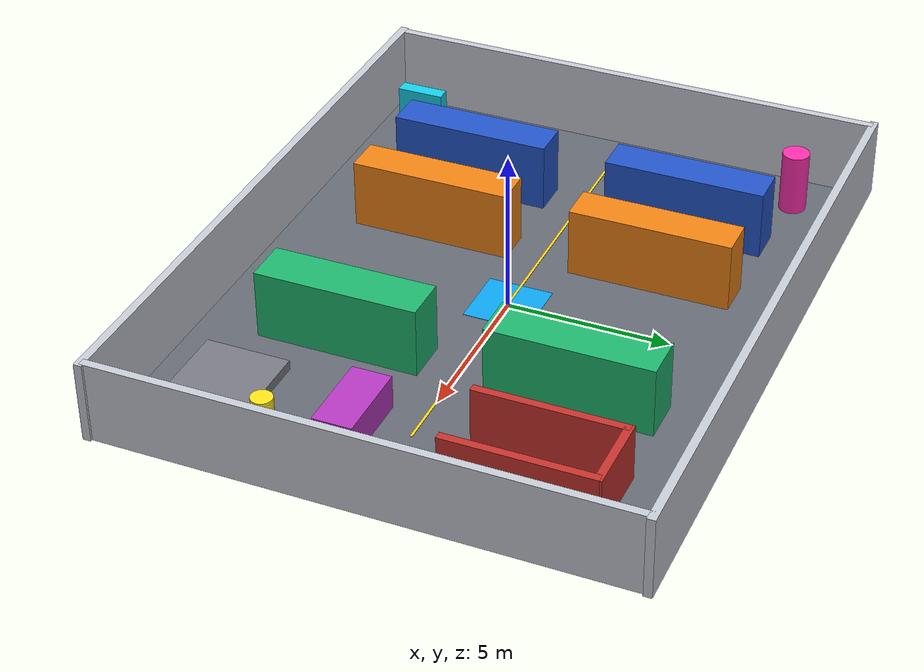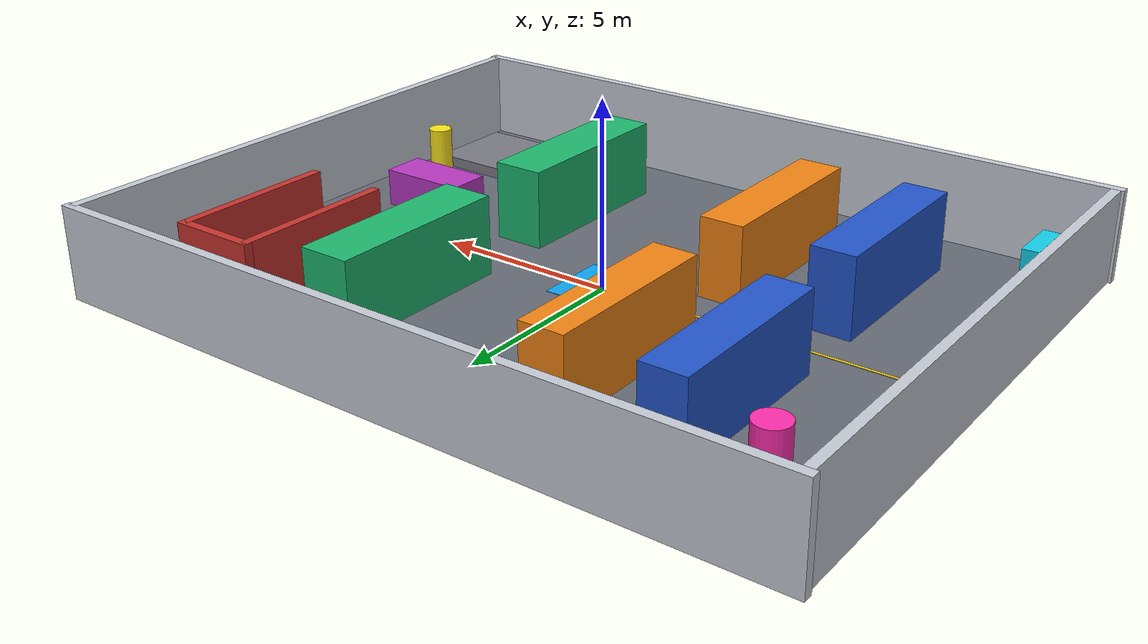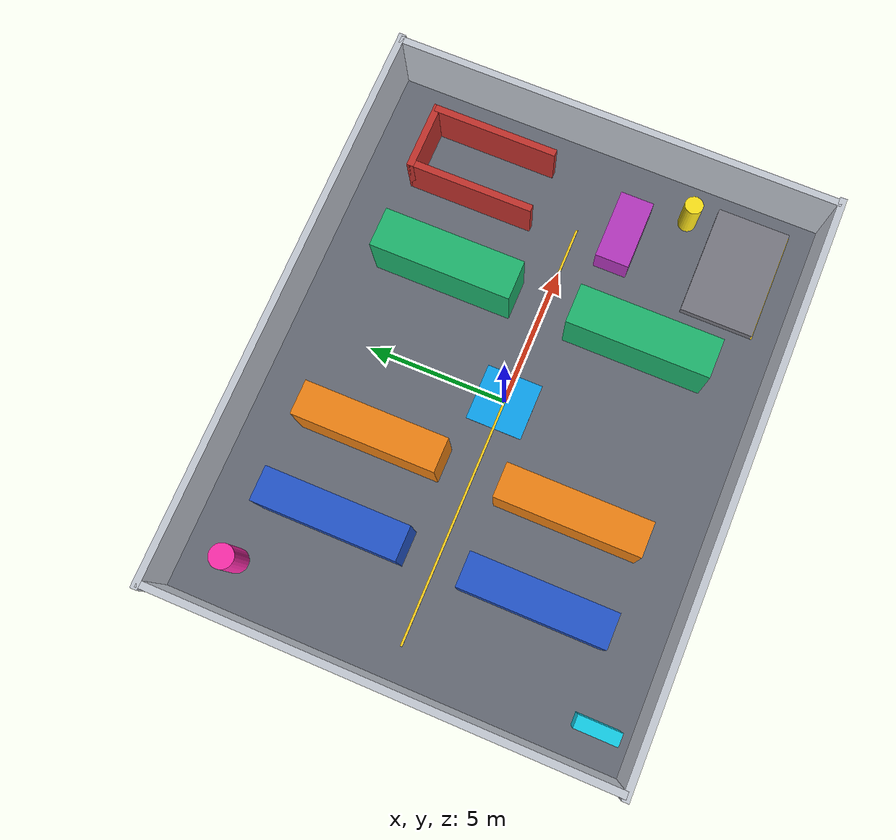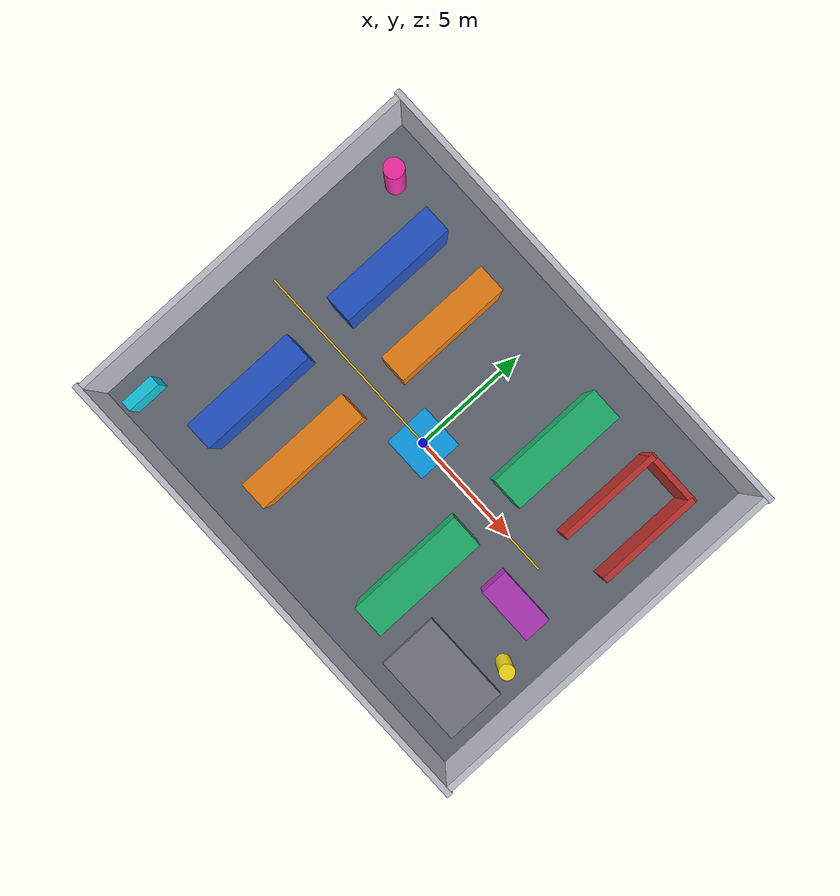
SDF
<?xml version="1.0" ?>
<sdf version="1.9">
  <world name="warehouse_world">

    <!-- Gazebo systems                                                    -->

    <plugin
      filename="gz-sim-physics-system"
      name="gz::sim::systems::Physics">
    </plugin>

    <plugin
      filename="gz-sim-user-commands-system"
      name="gz::sim::systems::UserCommands">
    </plugin>

    <plugin
      filename="gz-sim-scene-broadcaster-system"
      name="gz::sim::systems::SceneBroadcaster">
    </plugin>

    <plugin
      filename="gz-sim-sensors-system"
      name="gz::sim::systems::Sensors">
      <render_engine>ogre2</render_engine>
    </plugin>

    <plugin
      filename="gz-sim-imu-system"
      name="gz::sim::systems::Imu">
    </plugin>

    <!-- Lighting and scene                                                -->

    <scene>
      <ambient>0.45 0.45 0.50 1</ambient>
      <background>0.12 0.15 0.20 1</background>
      <shadows>true</shadows>
      <grid>false</grid>
    </scene>

    <light name="warehouse_sun" type="directional">
      <cast_shadows>true</cast_shadows>
      <pose>0 0 14 0 0 0</pose>
      <diffuse>0.95 0.95 0.92 1</diffuse>
      <specular>0.25 0.25 0.25 1</specular>
      <attenuation>
        <range>1000</range>
        <constant>0.9</constant>
        <linear>0.01</linear>
        <quadratic>0.001</quadratic>
      </attenuation>
      <direction>-0.45 0.25 -0.85</direction>
    </light>

    <light name="warehouse_fill_light" type="point">
      <pose>0 0 8 0 0 0</pose>
      <cast_shadows>false</cast_shadows>
      <diffuse>0.65 0.72 0.90 1</diffuse>
      <specular>0.1 0.1 0.1 1</specular>
      <attenuation>
        <range>30</range>
        <constant>0.4</constant>
        <linear>0.03</linear>
        <quadratic>0.002</quadratic>
      </attenuation>
    </light>

    <!-- Main warehouse floor: 20 m x 16 m                                -->

    <model name="warehouse_floor">
      <static>true</static>
      <link name="floor_link">
        <collision name="floor_collision">
          <geometry>
            <box>
              <size>20 16 0.10</size>
            </box>
          </geometry>
        </collision>

        <visual name="floor_visual">
          <geometry>
            <box>
              <size>20 16 0.10</size>
            </box>
          </geometry>
          <material>
            <ambient>0.32 0.34 0.38 1</ambient>
            <diffuse>0.40 0.42 0.46 1</diffuse>
            <specular>0.12 0.12 0.12 1</specular>
          </material>
        </visual>
      </link>
    </model>

    <!-- Perimeter walls                                                   -->

    <model name="north_wall">
      <static>true</static>
      <pose>0 8 1.25 0 0 0</pose>
      <link name="wall_link">
        <collision name="collision">
          <geometry><box><size>20.4 0.25 2.5</size></box></geometry>
        </collision>
        <visual name="visual">
          <geometry><box><size>20.4 0.25 2.5</size></box></geometry>
          <material>
            <ambient>0.68 0.70 0.74 1</ambient>
            <diffuse>0.78 0.80 0.84 1</diffuse>
          </material>
        </visual>
      </link>
    </model>

    <model name="south_wall">
      <static>true</static>
      <pose>0 -8 1.25 0 0 0</pose>
      <link name="wall_link">
        <collision name="collision">
          <geometry><box><size>20.4 0.25 2.5</size></box></geometry>
        </collision>
        <visual name="visual">
          <geometry><box><size>20.4 0.25 2.5</size></box></geometry>
          <material>
            <ambient>0.68 0.70 0.74 1</ambient>
            <diffuse>0.78 0.80 0.84 1</diffuse>
          </material>
        </visual>
      </link>
    </model>

    <model name="east_wall">
      <static>true</static>
      <pose>10 0 1.25 0 0 0</pose>
      <link name="wall_link">
        <collision name="collision">
          <geometry><box><size>0.25 16.0 2.5</size></box></geometry>
        </collision>
        <visual name="visual">
          <geometry><box><size>0.25 16.0 2.5</size></box></geometry>
          <material>
            <ambient>0.68 0.70 0.74 1</ambient>
            <diffuse>0.78 0.80 0.84 1</diffuse>
          </material>
        </visual>
      </link>
    </model>

    <model name="west_wall">
      <static>true</static>
      <pose>-10 0 1.25 0 0 0</pose>
      <link name="wall_link">
        <collision name="collision">
          <geometry><box><size>0.25 16.0 2.5</size></box></geometry>
        </collision>
        <visual name="visual">
          <geometry><box><size>0.25 16.0 2.5</size></box></geometry>
          <material>
            <ambient>0.68 0.70 0.74 1</ambient>
            <diffuse>0.78 0.80 0.84 1</diffuse>
          </material>
        </visual>
      </link>
    </model>

    <!-- Rack group A: left side                                           -->

    <model name="rack_a_upper">
      <static>true</static>
      <pose>-5.8 3.5 1.10 0 0 0</pose>
      <link name="rack_link">
        <collision name="collision">
          <geometry><box><size>1.2 5.0 2.2</size></box></geometry>
        </collision>
        <visual name="visual">
          <geometry><box><size>1.2 5.0 2.2</size></box></geometry>
          <material>
            <ambient>0.10 0.25 0.62 1</ambient>
            <diffuse>0.14 0.34 0.80 1</diffuse>
            <specular>0.15 0.15 0.15 1</specular>
          </material>
        </visual>
      </link>
    </model>

    <model name="rack_a_lower">
      <static>true</static>
      <pose>-5.8 -3.5 1.10 0 0 0</pose>
      <link name="rack_link">
        <collision name="collision">
          <geometry><box><size>1.2 5.0 2.2</size></box></geometry>
        </collision>
        <visual name="visual">
          <geometry><box><size>1.2 5.0 2.2</size></box></geometry>
          <material>
            <ambient>0.10 0.25 0.62 1</ambient>
            <diffuse>0.14 0.34 0.80 1</diffuse>
          </material>
        </visual>
      </link>
    </model>

    <!-- Rack group B: center-left                                         -->

    <model name="rack_b_upper">
      <static>true</static>
      <pose>-2.8 3.5 1.10 0 0 0</pose>
      <link name="rack_link">
        <collision name="collision">
          <geometry><box><size>1.2 5.0 2.2</size></box></geometry>
        </collision>
        <visual name="visual">
          <geometry><box><size>1.2 5.0 2.2</size></box></geometry>
          <material>
            <ambient>0.85 0.42 0.05 1</ambient>
            <diffuse>0.95 0.52 0.08 1</diffuse>
          </material>
        </visual>
      </link>
    </model>

    <model name="rack_b_lower">
      <static>true</static>
      <pose>-2.8 -3.5 1.10 0 0 0</pose>
      <link name="rack_link">
        <collision name="collision">
          <geometry><box><size>1.2 5.0 2.2</size></box></geometry>
        </collision>
        <visual name="visual">
          <geometry><box><size>1.2 5.0 2.2</size></box></geometry>
          <material>
            <ambient>0.85 0.42 0.05 1</ambient>
            <diffuse>0.95 0.52 0.08 1</diffuse>
          </material>
        </visual>
      </link>
    </model>

    <!-- Rack group C: right side                                          -->

    <model name="rack_c_upper">
      <static>true</static>
      <pose>3.5 3.5 1.10 0 0 0</pose>
      <link name="rack_link">
        <collision name="collision">
          <geometry><box><size>1.4 5.0 2.2</size></box></geometry>
        </collision>
        <visual name="visual">
          <geometry><box><size>1.4 5.0 2.2</size></box></geometry>
          <material>
            <ambient>0.10 0.55 0.36 1</ambient>
            <diffuse>0.12 0.72 0.44 1</diffuse>
          </material>
        </visual>
      </link>
    </model>

    <model name="rack_c_lower">
      <static>true</static>
      <pose>3.5 -3.5 1.10 0 0 0</pose>
      <link name="rack_link">
        <collision name="collision">
          <geometry><box><size>1.4 5.0 2.2</size></box></geometry>
        </collision>
        <visual name="visual">
          <geometry><box><size>1.4 5.0 2.2</size></box></geometry>
          <material>
            <ambient>0.10 0.55 0.36 1</ambient>
            <diffuse>0.12 0.72 0.44 1</diffuse>
          </material>
        </visual>
      </link>
    </model>

    <!-- Dead-end test structure                                           -->

    <model name="dead_end_left_wall">
      <static>true</static>
      <pose>6.2 3.8 0.9 0 0 0</pose>
      <link name="wall_link">
        <collision name="collision">
          <geometry><box><size>0.25 4.5 1.8</size></box></geometry>
        </collision>
        <visual name="visual">
          <geometry><box><size>0.25 4.5 1.8</size></box></geometry>
          <material>
            <ambient>0.55 0.15 0.15 1</ambient>
            <diffuse>0.78 0.20 0.18 1</diffuse>
          </material>
        </visual>
      </link>
    </model>

    <model name="dead_end_right_wall">
      <static>true</static>
      <pose>8.4 3.8 0.9 0 0 0</pose>
      <link name="wall_link">
        <collision name="collision">
          <geometry><box><size>0.25 4.5 1.8</size></box></geometry>
        </collision>
        <visual name="visual">
          <geometry><box><size>0.25 4.5 1.8</size></box></geometry>
          <material>
            <ambient>0.55 0.15 0.15 1</ambient>
            <diffuse>0.78 0.20 0.18 1</diffuse>
          </material>
        </visual>
      </link>
    </model>

    <model name="dead_end_back_wall">
      <static>true</static>
      <pose>7.3 6.0 0.9 0 0 0</pose>
      <link name="wall_link">
        <collision name="collision">
          <geometry><box><size>2.45 0.25 1.8</size></box></geometry>
        </collision>
        <visual name="visual">
          <geometry><box><size>2.45 0.25 1.8</size></box></geometry>
          <material>
            <ambient>0.55 0.15 0.15 1</ambient>
            <diffuse>0.78 0.20 0.18 1</diffuse>
          </material>
        </visual>
      </link>
    </model>

    <!-- Loading dock and packing areas                                    -->

    <model name="loading_dock_platform">
      <static>true</static>
      <pose>7.3 -5.7 0.18 0 0 0</pose>
      <link name="platform_link">
        <collision name="collision">
          <geometry><box><size>4.0 2.6 0.35</size></box></geometry>
        </collision>
        <visual name="visual">
          <geometry><box><size>4.0 2.6 0.35</size></box></geometry>
          <material>
            <ambient>0.35 0.35 0.38 1</ambient>
            <diffuse>0.48 0.48 0.52 1</diffuse>
          </material>
        </visual>
      </link>
    </model>

    <model name="packing_station">
      <static>true</static>
      <pose>7.0 -1.6 0.55 0 0 0</pose>
      <link name="station_link">
        <collision name="collision">
          <geometry><box><size>2.5 1.2 1.1</size></box></geometry>
        </collision>
        <visual name="visual">
          <geometry><box><size>2.5 1.2 1.1</size></box></geometry>
          <material>
            <ambient>0.55 0.16 0.58 1</ambient>
            <diffuse>0.72 0.22 0.76 1</diffuse>
          </material>
        </visual>
      </link>
    </model>

    <!-- Charging station                                                  -->

    <model name="charging_station">
      <static>true</static>
      <pose>-8.7 -6.7 0.6 0 0 0</pose>
      <link name="charger_link">
        <collision name="collision">
          <geometry><box><size>0.45 1.5 1.2</size></box></geometry>
        </collision>
        <visual name="visual">
          <geometry><box><size>0.45 1.5 1.2</size></box></geometry>
          <material>
            <ambient>0.05 0.62 0.72 1</ambient>
            <diffuse>0.08 0.82 0.92 1</diffuse>
            <emissive>0.02 0.12 0.15 1</emissive>
          </material>
        </visual>
      </link>
    </model>

    <!-- Floor markings: visual only                                       -->

    <model name="spawn_zone">
      <static>true</static>
      <pose>0 0 0.061 0 0 0</pose>
      <link name="marking_link">
        <visual name="visual">
          <geometry><box><size>2.0 2.0 0.012</size></box></geometry>
          <material>
            <ambient>0.05 0.55 0.85 1</ambient>
            <diffuse>0.05 0.65 0.95 1</diffuse>
            <emissive>0.01 0.05 0.08 1</emissive>
          </material>
        </visual>
      </link>
    </model>

    <model name="main_cross_aisle_marking">
      <static>true</static>
      <pose>-1.0 0 0.062 0 0 0</pose>
      <link name="marking_link">
        <visual name="visual">
          <geometry><box><size>15.5 0.08 0.014</size></box></geometry>
          <material>
            <ambient>0.95 0.76 0.08 1</ambient>
            <diffuse>1.0 0.82 0.10 1</diffuse>
            <emissive>0.12 0.09 0.01 1</emissive>
          </material>
        </visual>
      </link>
    </model>

    <model name="loading_zone_marking">
      <static>true</static>
      <pose>7.3 -7.0 0.062 0 0 0</pose>
      <link name="marking_link">
        <visual name="visual">
          <geometry><box><size>4.0 0.10 0.014</size></box></geometry>
          <material>
            <ambient>0.95 0.76 0.08 1</ambient>
            <diffuse>1.0 0.82 0.10 1</diffuse>
          </material>
        </visual>
      </link>
    </model>

    <!-- Asymmetric landmarks for AMCL                                     -->

    <model name="landmark_column_northwest">
      <static>true</static>
      <pose>-8.3 6.1 1.0 0 0 0</pose>
      <link name="column_link">
        <collision name="collision">
          <geometry><cylinder><radius>0.42</radius><length>2.0</length></cylinder></geometry>
        </collision>
        <visual name="visual">
          <geometry><cylinder><radius>0.42</radius><length>2.0</length></cylinder></geometry>
          <material>
            <ambient>0.90 0.12 0.58 1</ambient>
            <diffuse>1.0 0.18 0.68 1</diffuse>
          </material>
        </visual>
      </link>
    </model>

    <model name="landmark_column_southeast">
      <static>true</static>
      <pose>8.5 -3.5 0.8 0 0 0</pose>
      <link name="column_link">
        <collision name="collision">
          <geometry><cylinder><radius>0.32</radius><length>1.6</length></cylinder></geometry>
        </collision>
        <visual name="visual">
          <geometry><cylinder><radius>0.32</radius><length>1.6</length></cylinder></geometry>
          <material>
            <ambient>0.92 0.78 0.08 1</ambient>
            <diffuse>1.0 0.90 0.10 1</diffuse>
          </material>
        </visual>
      </link>
    </model>

  </world>
</sdf>
